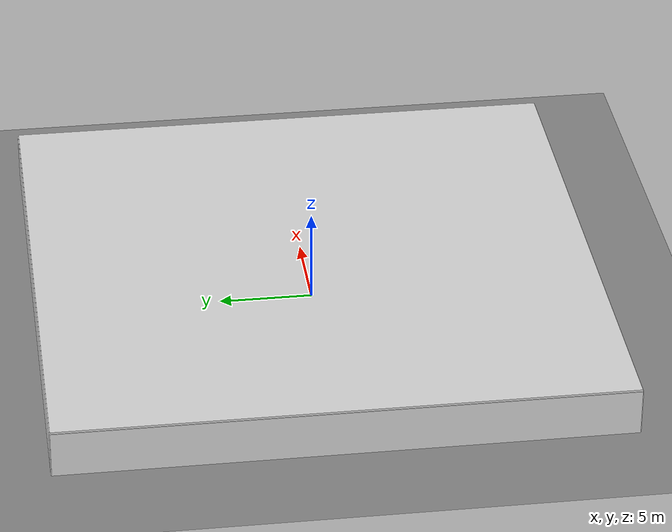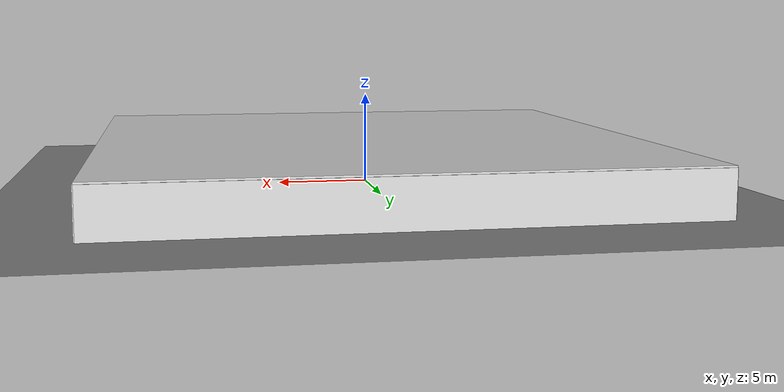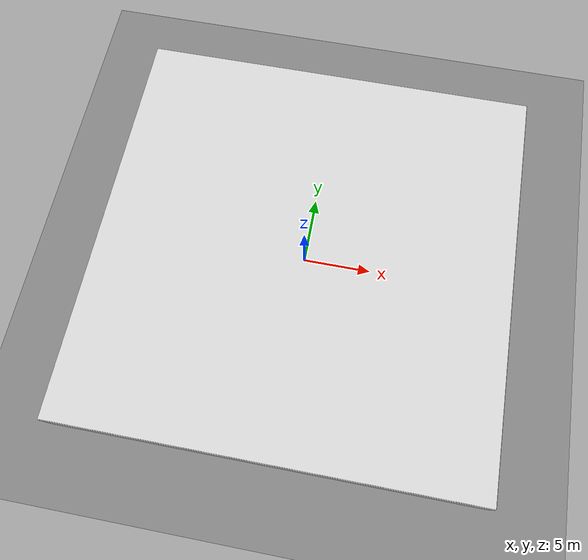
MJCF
<mujoco model="scene">

  <visual>
    <headlight diffuse="0.6 0.6 0.6" ambient="0.3 0.3 0.3" specular="0 0 0"/>
    <rgba haze="0.871 0.616 0.4 0.5"/>
    <global azimuth="-130" elevation="-20"/>
  </visual>

  <asset>
    <texture builtin="gradient" height="100" rgb1="0.9 0.9 0.9" rgb2="0.55 0.25 0.0" type="skybox" width="100"/>
    <include file="../../room/objects/materials.xml"/>
  </asset>

    <worldbody>
        <geom name="floor" friction="1 .1 .1" pos="0 0 0" size="0 0 0.125" type="plane" material="mat_floor" condim="3" conaffinity="1" contype="1" group="2"/>
        <light cutoff="1000" diffuse="1.5 1.5 1.5" dir="-0 0 -1.3" directional="true" exponent="10" pos="0 0 10.3" specular=".1 .1 .1" castshadow="false"/>

        <geom name="wall_negx" type="box" pos="-15.0 0.0 1.25" size="0.05 15.0 1.25" material="mat_wall"/>
        <geom name="wall_posx" type="box" pos=" 15.0 0.0 1.25" size="0.05 15.0 1.25" material="mat_wall"/>
        <geom name="wall_negy" type="box" pos="0.0 -15.0 1.25" size="15.0 0.05 1.25" material="mat_wall"/>
        <geom name="wall_posy" type="box" pos="0.0  15.0 1.25" size="15.0 0.05 1.25" material="mat_wall"/>

        <geom name="ceiling" type="box"
          pos="0 0 2.55"
          size="15.0 15.0 0.05"
          material="mat_wall"
          contype="1" conaffinity="1"
        />

        <!-- SCENARIO: trash_can_10 -->
        <!-- TARGET_BODY_NAME: trash_can_target -->
        <!-- LAYOUT: target=trash_can, distance=far, side=left, difficulty=hard -->

        <!-- TARGET: trash_can -->
        <body name="trash_can_target" pos="7.1646 0.8136 0.0" euler="0 0 1.2204">
          <include file="../../room/objects/trash_can.xml"/>
        </body>

        <!-- OBSTRUCTOR: none -->

        <!-- DISTRACTOR: couch -->
        <body name="couch_distractor1" pos="2.6141 -1.5039 0.0" euler="0 0 0.7489">
          <include file="../../room/objects/couch.xml"/>
        </body>
        <!-- DISTRACTOR: bookshelf -->
        <body name="bookshelf_distractor2" pos="6.0741 -0.9639 0.0" euler="0 0 1.3525">
          <include file="../../room/objects/bookshelf.xml"/>
        </body>
    </worldbody>
</mujoco>

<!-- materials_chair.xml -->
<mujoco>
  <texture name="tex_wood_chair" type="2d" file="oak_veneer_01_diff_2k.png"/>
  <material name="mat_wood_chair"
            texture="tex_wood_chair"
            texrepeat="1.2 1.2"
            texuniform="true"
            rgba="1 1 1 1"
            specular="0.22"
            shininess="0.35"
            reflectance="0.04"/>
</mujoco>

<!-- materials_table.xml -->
<mujoco>
  <texture name="tex_wood_table" type="2d" file="wood_table_001_diff_2k.png"/>
  <material name="mat_wood_table"
            texture="tex_wood_table"
            texrepeat="1.2 1.2"
            texuniform="true"
            rgba="1 1 1 1"
            specular="0.22"
            shininess="0.35"
            reflectance="0.04"/>
</mujoco>

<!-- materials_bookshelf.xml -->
<mujoco>
  <texture name="tex_bookshelf_wood"
           type="2d"
           file="oak_veneer_01_diff_2k.png"/>

  <material name="mat_wood_bookshelf"
            texture="tex_bookshelf_wood"
            texrepeat="1.2 1.2"
            texuniform="true"
            rgba="1 1 1 1"
            specular="0.22"
            shininess="0.35"
            reflectance="0.04"/>
</mujoco>

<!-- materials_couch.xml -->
<mujoco>
  <texture name="tex_wood_couch" type="2d" file="wood_table_001_diff_2k.png"/>
  <material name="mat_wood_couch"
            texture="tex_wood_couch"
            texrepeat="1.2 1.2"
            texuniform="true"
            rgba="1 1 1 1"
            specular="0.22"
            shininess="0.35"
            reflectance="0.04"/>

  <texture name="tex_fabric" type="2d" file="rough_linen_diff_2k.png"/>
  <material name="mat_fabric"
            texture="tex_fabric"
            texrepeat="1.2 1.2"
            texuniform="true"
            rgba="1 1 1 1"
            specular="0.10"
            shininess="0.08"
            reflectance="0.01"/>
</mujoco>

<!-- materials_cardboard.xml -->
<mujoco>
  <texture name="tex_cardboard" type="2d" file="cardboard.png"/>
  <material name="mat_cardboard"
            texture="tex_cardboard"
            texrepeat="1.2 1.2"
            texuniform="true"
            rgba="1 1 1 1"
            specular="0.10"
            shininess="0.08"
            reflectance="0.01"/>
</mujoco>

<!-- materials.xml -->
<mujoco>
  <material name="mat_wall" rgba="0.85 0.85 0.85 1"/>
  <include file="materials_chair.xml"/>

  <include file="materials_table.xml"/>

  <include file="materials_bookshelf.xml"/>
  <material name="mat_book_red" rgba="0.70 0.18 0.16 1"/>
  <material name="mat_book_blue" rgba="0.16 0.31 0.62 1"/>
  <material name="mat_book_green" rgba="0.22 0.45 0.24 1"/>
  <material name="mat_book_yellow" rgba="0.78 0.66 0.22 1"/>
  <material name="mat_book_dark" rgba="0.20 0.18 0.17 1"/>

  <include file="materials_couch.xml"/>
  <include file="materials_cardboard.xml"/>

  <texture name="tex_metal" type="2d" file="metal.png"/>
  <material name="mat_metal" texture="tex_metal" texrepeat="2 2" reflectance="0.3"/>
  <material name="mat_trash_can_dark_green"
            texture="tex_metal"
            texrepeat="2 2"
            rgba="0.10 0.18 0.12 1"
            specular="0.18"
            shininess="0.20"
            reflectance="0.02"/>

  <texture name="tex_floor" type="2d" builtin="checker" width="512" height="512"
           rgb1="0.55 0.55 0.55" rgb2="0.50 0.50 0.50"/>
  <material name="mat_floor" texture="tex_floor" texrepeat="4 4" reflectance="0.00"/>

</mujoco>

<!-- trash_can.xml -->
<mujoco>
  <body>
    <!-- bottom foot ring -->
    <geom name="trash_can_base_ring" type="cylinder"
          pos="0 0 0.020" size="0.115 0.020"
          material="mat_trash_can_dark_green"/>

    <!-- main body -->
    <geom name="trash_can_body" type="cylinder"
          pos="0 0 0.155" size="0.138 0.135"
          material="mat_trash_can_dark_green"/>

    <!-- upper collar -->
    <geom name="trash_can_upper_band" type="cylinder"
          pos="0 0 0.265" size="0.152 0.016"
          material="mat_trash_can_dark_green"/>

    <!-- rolled top rim -->
    <geom name="trash_can_rim" type="cylinder"
          pos="0 0 0.292" size="0.168 0.010"
          material="mat_trash_can_dark_green"/>

    <!-- inset inner lip for a more finished opening -->
    <geom name="trash_can_inner_lip" type="cylinder"
          pos="0 0 0.276" size="0.126 0.008"
          material="mat_trash_can_dark_green"/>
  </body>
</mujoco>

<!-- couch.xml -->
<mujoco>
<body>
  <!-- legs -->
  <geom name="couch_leg_fl" type="box"
        pos="-0.50 0.26 0.04" size="0.03 0.03 0.04"
        material="mat_wood_couch"/>
  <geom name="couch_leg_fr" type="box"
        pos="0.50 0.26 0.04" size="0.03 0.03 0.04"
        material="mat_wood_couch"/>
  <geom name="couch_leg_rl" type="box"
        pos="-0.50 -0.26 0.04" size="0.03 0.03 0.04"
        material="mat_wood_couch"/>
  <geom name="couch_leg_rr" type="box"
        pos="0.50 -0.26 0.04" size="0.03 0.03 0.04"
        material="mat_wood_couch"/>

  <!-- soft seat base -->
  <geom name="couch_seat_base" type="box"
        pos="0 0 0.16" size="0.54 0.27 0.08"
        material="mat_fabric"/>
  <geom name="couch_seat_front_roll" type="capsule"
        fromto="-0.48 0.24 0.195 0.48 0.24 0.195"
        size="0.055"
        material="mat_fabric"/>

  <!-- seat cushions -->
  <geom name="couch_seat_left" type="ellipsoid"
        pos="-0.22 0.02 0.255" size="0.17 0.21 0.065"
        material="mat_fabric"/>
  <geom name="couch_seat_mid" type="ellipsoid"
        pos="0.00 0.02 0.255" size="0.15 0.21 0.065"
        material="mat_fabric"/>
  <geom name="couch_seat_right" type="ellipsoid"
        pos="0.22 0.02 0.255" size="0.17 0.21 0.065"
        material="mat_fabric"/>

  <!-- back cushions -->
  <geom name="couch_back_core" type="box"
        pos="0 -0.160 0.37" size="0.53 0.105 0.16"
        material="mat_fabric"/>
  <geom name="couch_back_top_roll" type="capsule"
        fromto="-0.48 -0.145 0.52 0.48 -0.145 0.52"
        size="0.060"
        material="mat_fabric"/>
  <geom name="couch_back_left" type="ellipsoid"
        pos="-0.22 -0.095 0.39" size="0.16 0.100 0.15"
        material="mat_fabric"/>
  <geom name="couch_back_mid" type="ellipsoid"
        pos="0.00 -0.095 0.39" size="0.14 0.100 0.15"
        material="mat_fabric"/>
  <geom name="couch_back_right" type="ellipsoid"
        pos="0.22 -0.095 0.39" size="0.16 0.100 0.15"
        material="mat_fabric"/>

  <!-- softer armrests -->
  <geom name="couch_arm_left_core" type="box"
        pos="-0.49 0.02 0.34" size="0.055 0.24 0.15"
        material="mat_fabric"/>
  <geom name="couch_arm_right_core" type="box"
        pos="0.49 0.02 0.34" size="0.055 0.24 0.15"
        material="mat_fabric"/>
  <geom name="couch_arm_left_top" type="capsule"
        fromto="-0.49 -0.19 0.49 -0.49 0.18 0.49"
        size="0.050"
        material="mat_fabric"/>
  <geom name="couch_arm_right_top" type="capsule"
        fromto="0.49 -0.19 0.49 0.49 0.18 0.49"
        size="0.050"
        material="mat_fabric"/>
</body>
</mujoco>

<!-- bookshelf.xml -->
<mujoco>
  <body name="bookshelf" pos="0 0 0">
      <!-- Outer carcass -->
      <geom name="bookshelf_left_panel" type="box"
            pos="-0.285 0 0.54" size="0.025 0.12 0.54"
            material="mat_wood_bookshelf"/>

      <geom name="bookshelf_right_panel" type="box"
            pos="0.285 0 0.54" size="0.025 0.12 0.54"
            material="mat_wood_bookshelf"/>

      <geom name="bookshelf_bottom_panel" type="box"
            pos="0 0 0.035" size="0.285 0.12 0.035"
            material="mat_wood_bookshelf"/>

      <geom name="bookshelf_top_panel" type="box"
            pos="0 0 1.045" size="0.285 0.12 0.035"
            material="mat_wood_bookshelf"/>

      <!-- invisible collision panels to keep objects inside the shelf -->
      <geom name="bookshelf_front_collision" type="box"
            pos="0 -0.130 0.54" size="0.270 0.012 0.50"
            rgba="0 0 0 0"/>
      <geom name="bookshelf_back_collision" type="box"
            pos="0 0.130 0.54" size="0.270 0.012 0.50"
            rgba="0 0 0 0"/>

      <!-- interior shelves -->
      <geom name="bookshelf_shelf_1" type="box"
            pos="0 0.01 0.29" size="0.255 0.10 0.030"
            material="mat_wood_bookshelf"/>
      <geom name="book_s1_a" type="box"
            pos="-0.18 0.00 0.355" size="0.022 0.070 0.065"
            material="mat_book_red"/>
      <geom name="book_s1_b" type="box"
            pos="-0.12 0.00 0.345" size="0.018 0.070 0.055"
            material="mat_book_blue"/>
      <geom name="book_s1_c" type="box"
            pos="-0.07 0.00 0.360" size="0.020 0.070 0.070"
            material="mat_book_green"/>
      <geom name="book_s1_d" type="box"
            pos="0.02 0.00 0.350" size="0.024 0.070 0.060"
            material="mat_book_yellow"/>
      <geom name="book_s1_e" type="box"
            pos="0.08 0.00 0.340" size="0.018 0.070 0.050"
            material="mat_book_dark"/>
      <geom name="book_s1_f" type="box"
            pos="0.18 0.00 0.355" size="0.026 0.070 0.065"
            material="mat_book_blue"/>

      <geom name="bookshelf_shelf_2" type="box"
            pos="0 0.01 0.56" size="0.255 0.10 0.030"
            material="mat_wood_bookshelf"/>
      <geom name="book_s2_a" type="box"
            pos="-0.20 0.00 0.620" size="0.020 0.070 0.050"
            material="mat_book_green"/>
      <geom name="book_s2_b" type="box"
            pos="-0.15 0.00 0.635" size="0.016 0.070 0.065"
            material="mat_book_red"/>
      <geom name="book_s2_c" type="box"
            pos="-0.10 0.00 0.628" size="0.021 0.070 0.058"
            material="mat_book_dark"/>
      <geom name="book_s2_d" type="box"
            pos="0.04 0.00 0.640" size="0.028 0.070 0.070"
            material="mat_book_blue"/>
      <geom name="book_s2_e" type="box"
            pos="0.11 0.00 0.622" size="0.018 0.070 0.052"
            material="mat_book_yellow"/>
      <geom name="book_s2_f" type="box"
            pos="0.17 0.00 0.632" size="0.022 0.070 0.062"
            material="mat_book_red"/>

      <geom name="bookshelf_shelf_3" type="box"
            pos="0 0.01 0.83" size="0.255 0.10 0.030"
            material="mat_wood_bookshelf"/>
      <geom name="book_s3_a" type="box"
            pos="-0.19 0.00 0.895" size="0.018 0.070 0.065"
            material="mat_book_yellow"/>
      <geom name="book_s3_b" type="box"
            pos="-0.14 0.00 0.885" size="0.022 0.070 0.055"
            material="mat_book_blue"/>
      <geom name="book_s3_c" type="box"
            pos="-0.08 0.00 0.900" size="0.020 0.070 0.070"
            material="mat_book_green"/>
      <geom name="book_s3_d" type="box"
            pos="0.00 0.00 0.890" size="0.026 0.070 0.060"
            material="mat_book_red"/>
      <geom name="book_s3_e" type="box"
            pos="0.10 0.00 0.882" size="0.018 0.070 0.052"
            material="mat_book_dark"/>
      <geom name="book_s3_f" type="box"
            pos="0.17 0.00 0.892" size="0.024 0.070 0.062"
            material="mat_book_green"/>

      <!-- front face frame -->
      <geom name="bookshelf_front_left_stile" type="box"
            pos="-0.268 -0.108 0.54" size="0.012 0.010 0.54"
            material="mat_wood_bookshelf"/>

      <geom name="bookshelf_front_right_stile" type="box"
            pos="0.268 -0.108 0.54" size="0.012 0.010 0.54"
            material="mat_wood_bookshelf"/>

      <geom name="bookshelf_front_top_rail" type="box"
            pos="0 -0.108 1.03" size="0.255 0.010 0.012"
            material="mat_wood_bookshelf"/>

      <geom name="bookshelf_front_mid_rail_1" type="box"
            pos="0 -0.108 0.81" size="0.255 0.010 0.010"
            material="mat_wood_bookshelf"/>

      <geom name="bookshelf_front_mid_rail_2" type="box"
            pos="0 -0.108 0.54" size="0.255 0.010 0.010"
            material="mat_wood_bookshelf"/>

      <geom name="bookshelf_front_bottom_rail" type="box"
            pos="0 -0.108 0.05" size="0.255 0.010 0.014"
            material="mat_wood_bookshelf"/>

      <!-- feet -->
      <geom name="bookshelf_left_foot" type="box"
            pos="-0.22 -0.06 0.008" size="0.04 0.04 0.008"
            material="mat_wood_bookshelf"/>

      <geom name="bookshelf_right_foot" type="box"
            pos="0.22 -0.06 0.008" size="0.04 0.04 0.008"
            material="mat_wood_bookshelf"/>
  </body>
</mujoco>
